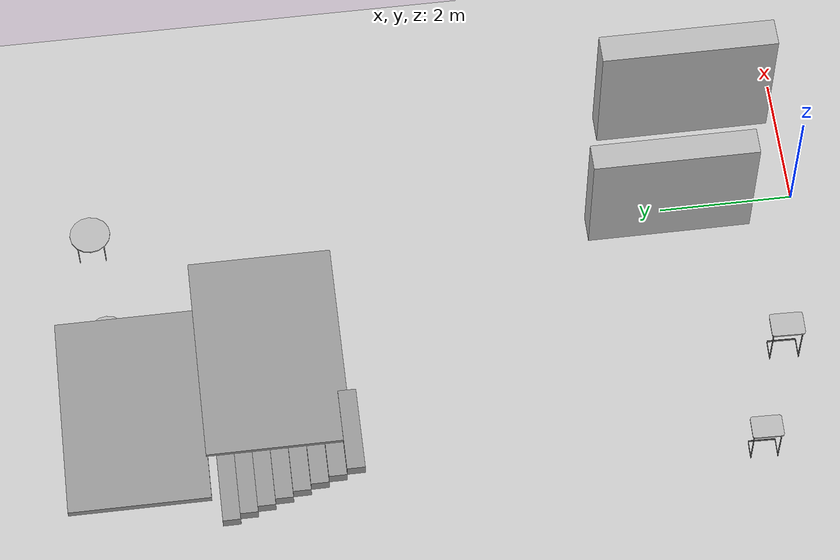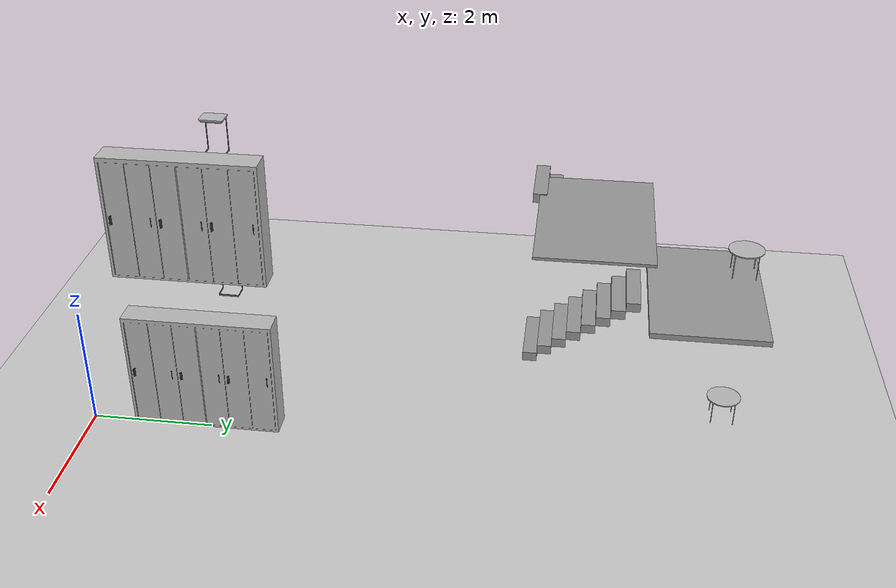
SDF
<sdf version="1.6">
 <world name="default">
  <model name="ground_plane">
   <static>1</static>
   <link name="link">
    <collision name="collision">
     <geometry><plane><normal>0 0 1</normal><size>100 100</size></plane></geometry>
     <surface><friction><ode><mu>100</mu><mu2>50</mu2></ode></friction></surface>
    </collision>
    <visual name="visual">
     <cast_shadows>0</cast_shadows>
     <geometry><plane><normal>0 0 1</normal><size>100 100</size></plane></geometry>
     <material>
      <script><uri>file://media/materials/scripts/gazebo.material</uri><name>Gazebo/Grey</name></script>
     </material>
    </visual>
   </link>
  </model>
  <model name="stairs_platform45">
   <pose>-3.153592 10.122335 1.325 0 -0 0</pose>
   <link name="link">
    <collision name="collision">
     <geometry><box><size>3 2 0.1</size></box></geometry>
     <surface><friction><ode><mu>100</mu><mu2>50</mu2></ode></friction></surface>
     <pose>0 0 0.05 0 -0 0</pose>
    </collision>
    <visual name="visual">
     <cast_shadows>0</cast_shadows>
     <geometry><box><size>3 2 0.1</size></box></geometry>
     <material>
      <script><uri>file://media/materials/scripts/gazebo.material</uri><name>Gazebo/Grey</name></script>
     </material>
    </visual>
   </link>
   <static>1</static>
  </model>
  <model name="stairs_platform5">
   <pose>-3.153592 8.122335 2.65 0 -0 0</pose>
   <link name="link">
    <collision name="collision">
     <geometry><box><size>3 2 0.05</size></box></geometry>
     <surface><friction><ode><mu>100</mu><mu2>50</mu2></ode></friction></surface>
     <pose>0 0 0.025 0 -0 0</pose>
    </collision>
    <visual name="visual">
     <cast_shadows>0</cast_shadows>
     <geometry><box><size>3 2 0.05</size></box></geometry>
     <material>
      <script><uri>file://media/materials/scripts/gazebo.material</uri><name>Gazebo/Grey</name></script>
     </material>
    </visual>
   </link>
   <static>1</static>
  </model>
  <include>
   <uri>model://rs_gazebo/models/ss_hq4/hall_table</uri>
   <name>hall_table</name>
   <pose>-1.34208 10.4197 0.237286 0 -4e-06 -1.57817</pose>
  </include>
  <include>
   <uri>model://rs_gazebo/models/ss_hq4/414_wardbrode</uri>
   <name>414_wardbrode</name>
   <pose>-0.178337 1.92734 1 1.5e-05 -0 1.57082</pose>
  </include>
  <include>
   <uri>model://rs_gazebo/models/ss_hq4/403_mini_table</uri>
   <name>403_mini_table</name>
   <pose>-4.16602 1.15405 0.348625 0.001236 1e-05 -1.59612</pose>
  </include>
  <include>
   <uri>model://rs_gazebo/models/ss_hq4/hall_table</uri>
   <name>hall_table_4</name>
   <pose>-1.34208 10.4197 3.037286 0 -4e-06 -1.57817</pose>
  </include>
  <include>
   <uri>model://rs_gazebo/models/ss_hq4/414_wardbrode</uri>
   <name>414_wardbrode_4</name>
   <pose>-0.178337 1.92734 3.8 1.5e-05 -0 1.57082</pose>
  </include>
  <include>
   <uri>model://rs_gazebo/models/ss_hq4/403_mini_table</uri>
   <name>403_mini_table_4</name>
   <pose>-4.16602 1.15405 3.348625 0.001236 1e-05 -1.59612</pose>
  </include>
  <include>
   <uri>model://rs_gazebo/models/ss_hq4/stairs_45</uri>
   <name>stairs_45_1</name>
   <pose>-3.2 8.0 0 0 0 3.14</pose>
  </include>
  <include>
   <uri>model://rs_gazebo/models/ss_hq4/stairs_45</uri>
   <name>stairs_45_2</name>
   <pose>-4.5 8.0 1.345 0 0 0</pose>
  </include>
 </world>
</sdf>
